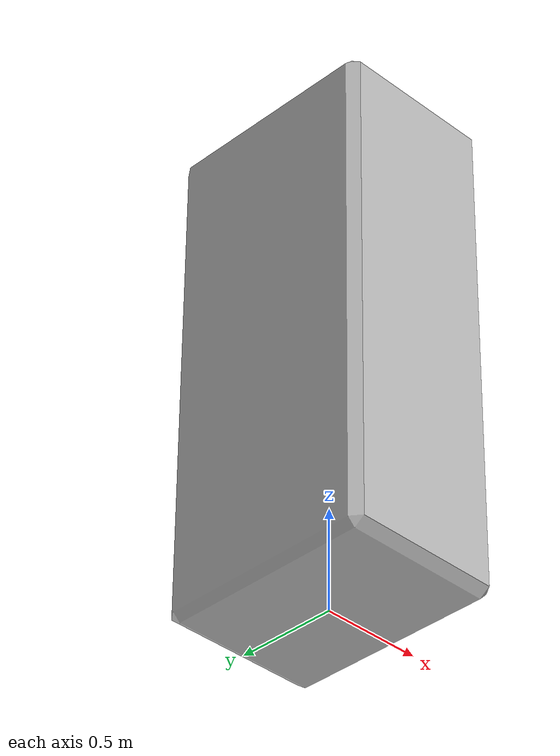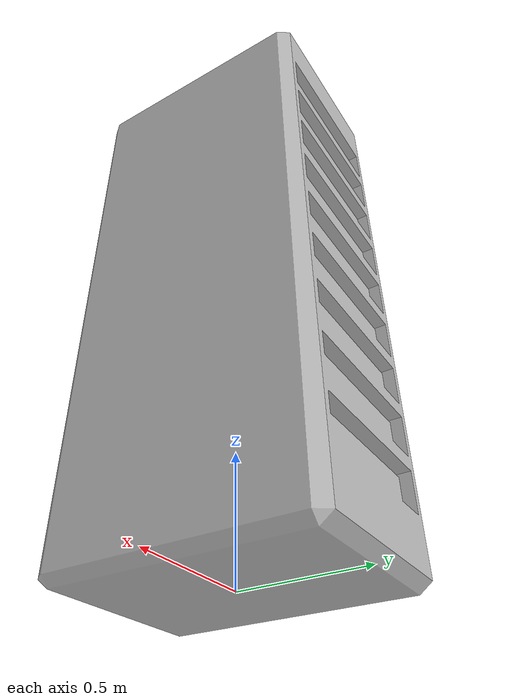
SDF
<?xml version="1.0" ?>
<sdf version="1.5">
  <model name="Server">
    <static>true</static>
    <link name="link">
      <collision name="collision">
        <geometry>
            <mesh>
                <uri>model://server/meshes/server.stl</uri>
                <scale>1 1 1</scale>
            </mesh>
        </geometry>
      </collision>
      <visual name="visual">
        <geometry>
          <mesh>
            <uri>model://server/meshes/server.stl</uri>
            <scale>1 1 1</scale>
          </mesh>
        </geometry>
      </visual>
    </link>
    <gazebo reference="link">
      <material>Gazebo/White</material>
    </gazebo>
  </model>
</sdf>
